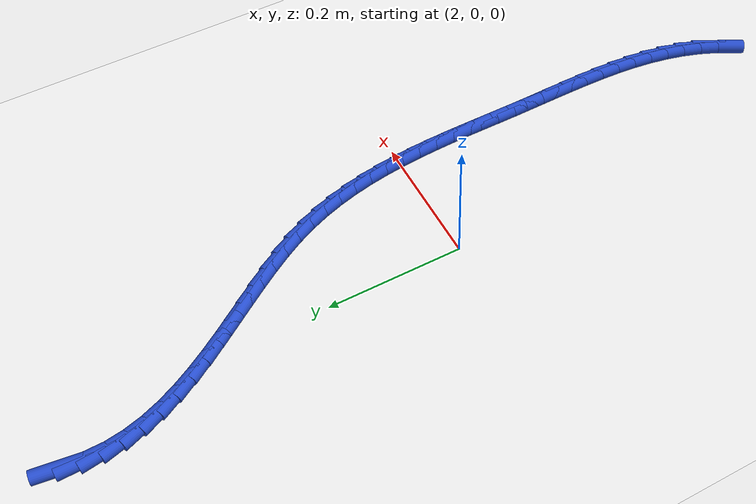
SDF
<sdf version="1.6">
 <world name="default">
  <model name="ground_plane">
   <static>1</static>
   <link name="link">
    <collision name="collision">
     <geometry><plane><normal>0 0 1</normal><size>100 100</size></plane></geometry>
     <surface><friction><ode><mu>100</mu><mu2>50</mu2></ode></friction></surface>
    </collision>
    <visual name="visual">
     <cast_shadows>0</cast_shadows>
     <geometry><plane><normal>0 0 1</normal><size>100 100</size></plane></geometry>
     <material>
      <script><uri>file://media/materials/scripts/gazebo.material</uri><name>Gazebo/WhiteGlow</name></script>
     </material>
    </visual>
   </link>
  </model>
  <model name="line">
   <link name="link_102">
    <pose>1.94351243120654 0.5826096786088142 0.01 0 1.57 1.4415644303944506</pose>
    <collision name="collision">
     <geometry><cylinder><radius>0.01</radius><length>0.08</length></cylinder></geometry>
    </collision>
    <visual name="visual">
     <material>
      <script><name>Gazebo/Blue</name><uri>file://media/materials/scripts/gazebo.material</uri></script>
     </material>
     <geometry><cylinder><radius>0.01</radius><length>0.08</length></cylinder></geometry>
    </visual>
   </link>
   <link name="link_103">
    <pose>1.9398380834825428 0.5543359314568718 0.01 0 1.57 -1.5582476464024653</pose>
    <collision name="collision">
     <geometry><cylinder><radius>0.01</radius><length>0.08</length></cylinder></geometry>
    </collision>
    <visual name="visual">
     <material>
      <script><name>Gazebo/Blue</name><uri>file://media/materials/scripts/gazebo.material</uri></script>
     </material>
     <geometry><cylinder><radius>0.01</radius><length>0.08</length></cylinder></geometry>
    </visual>
   </link>
   <link name="link_104">
    <pose>1.940185110414232 0.526682926895899 0.01 0 1.57 -1.426111541294023</pose>
    <collision name="collision">
     <geometry><cylinder><radius>0.01</radius><length>0.08</length></cylinder></geometry>
    </collision>
    <visual name="visual">
     <material>
      <script><name>Gazebo/Blue</name><uri>file://media/materials/scripts/gazebo.material</uri></script>
     </material>
     <geometry><cylinder><radius>0.01</radius><length>0.08</length></cylinder></geometry>
    </visual>
   </link>
   <link name="link_105">
    <pose>1.9441339575045418 0.49958087948975377 0.01 0 1.57 -1.3090645618036647</pose>
    <collision name="collision">
     <geometry><cylinder><radius>0.01</radius><length>0.08</length></cylinder></geometry>
    </collision>
    <visual name="visual">
     <material>
      <script><name>Gazebo/Blue</name><uri>file://media/materials/scripts/gazebo.material</uri></script>
     </material>
     <geometry><cylinder><radius>0.01</radius><length>0.08</length></cylinder></geometry>
    </visual>
   </link>
   <link name="link_106">
    <pose>1.9512650702564083 0.47296000380229264 0.01 0 1.57 -1.2098443063075954</pose>
    <collision name="collision">
     <geometry><cylinder><radius>0.01</radius><length>0.08</length></cylinder></geometry>
    </collision>
    <visual name="visual">
     <material>
      <script><name>Gazebo/Blue</name><uri>file://media/materials/scripts/gazebo.material</uri></script>
     </material>
     <geometry><cylinder><radius>0.01</radius><length>0.08</length></cylinder></geometry>
    </visual>
   </link>
   <link name="link_107">
    <pose>1.961158894172768 0.44675051439737357 0.01 0 1.57 -1.128934660780634</pose>
    <collision name="collision">
     <geometry><cylinder><radius>0.01</radius><length>0.08</length></cylinder></geometry>
    </collision>
    <visual name="visual">
     <material>
      <script><name>Gazebo/Blue</name><uri>file://media/materials/scripts/gazebo.material</uri></script>
     </material>
     <geometry><cylinder><radius>0.01</radius><length>0.08</length></cylinder></geometry>
    </visual>
   </link>
   <link name="link_108">
    <pose>1.9733958747565559 0.42088262583885383 0.01 0 1.57 -1.06547464182261</pose>
    <collision name="collision">
     <geometry><cylinder><radius>0.01</radius><length>0.08</length></cylinder></geometry>
    </collision>
    <visual name="visual">
     <material>
      <script><name>Gazebo/Blue</name><uri>file://media/materials/scripts/gazebo.material</uri></script>
     </material>
     <geometry><cylinder><radius>0.01</radius><length>0.08</length></cylinder></geometry>
    </visual>
   </link>
   <link name="link_109">
    <pose>1.9875564575107079 0.3952865526905908 0.01 0 1.57 -1.0180701814335957</pose>
    <collision name="collision">
     <geometry><cylinder><radius>0.01</radius><length>0.08</length></cylinder></geometry>
    </collision>
    <visual name="visual">
     <material>
      <script><name>Gazebo/Blue</name><uri>file://media/materials/scripts/gazebo.material</uri></script>
     </material>
     <geometry><cylinder><radius>0.01</radius><length>0.08</length></cylinder></geometry>
    </visual>
   </link>
   <link name="link_110">
    <pose>2.00322108793816 0.3698925095164422 0.01 0 1.57 -0.9853213281584219</pose>
    <collision name="collision">
     <geometry><cylinder><radius>0.01</radius><length>0.08</length></cylinder></geometry>
    </collision>
    <visual name="visual">
     <material>
      <script><name>Gazebo/Blue</name><uri>file://media/materials/scripts/gazebo.material</uri></script>
     </material>
     <geometry><cylinder><radius>0.01</radius><length>0.08</length></cylinder></geometry>
    </visual>
   </link>
   <link name="link_111">
    <pose>2.019970211541847 0.34463071088026503 0.01 0 1.57 -0.9661007872257618</pose>
    <collision name="collision">
     <geometry><cylinder><radius>0.01</radius><length>0.08</length></cylinder></geometry>
    </collision>
    <visual name="visual">
     <material>
      <script><name>Gazebo/Blue</name><uri>file://media/materials/scripts/gazebo.material</uri></script>
     </material>
     <geometry><cylinder><radius>0.01</radius><length>0.08</length></cylinder></geometry>
    </visual>
   </link>
   <link name="link_112">
    <pose>2.037384273824706 0.31943137134591704 0.01 0 1.57 -0.9596769359094095</pose>
    <collision name="collision">
     <geometry><cylinder><radius>0.01</radius><length>0.08</length></cylinder></geometry>
    </collision>
    <visual name="visual">
     <material>
      <script><name>Gazebo/Blue</name><uri>file://media/materials/scripts/gazebo.material</uri></script>
     </material>
     <geometry><cylinder><radius>0.01</radius><length>0.08</length></cylinder></geometry>
    </visual>
   </link>
   <link name="link_113">
    <pose>2.0550437202896714 0.29422470547725543 0.01 0 1.57 -0.9657565607343671</pose>
    <collision name="collision">
     <geometry><cylinder><radius>0.01</radius><length>0.08</length></cylinder></geometry>
    </collision>
    <visual name="visual">
     <material>
      <script><name>Gazebo/Blue</name><uri>file://media/materials/scripts/gazebo.material</uri></script>
     </material>
     <geometry><cylinder><radius>0.01</radius><length>0.08</length></cylinder></geometry>
    </visual>
   </link>
   <link name="link_114">
    <pose>2.0725289964396794 0.2689409278381378 0.01 0 1.57 -0.984489796676276</pose>
    <collision name="collision">
     <geometry><cylinder><radius>0.01</radius><length>0.08</length></cylinder></geometry>
    </collision>
    <visual name="visual">
     <material>
      <script><name>Gazebo/Blue</name><uri>file://media/materials/scripts/gazebo.material</uri></script>
     </material>
     <geometry><cylinder><radius>0.01</radius><length>0.08</length></cylinder></geometry>
    </visual>
   </link>
   <link name="link_115">
    <pose>2.0894205477776655 0.24351025299242132 0.01 0 1.57 -1.0164511597164658</pose>
    <collision name="collision">
     <geometry><cylinder><radius>0.01</radius><length>0.08</length></cylinder></geometry>
    </collision>
    <visual name="visual">
     <material>
      <script><name>Gazebo/Blue</name><uri>file://media/materials/scripts/gazebo.material</uri></script>
     </material>
     <geometry><cylinder><radius>0.01</radius><length>0.08</length></cylinder></geometry>
    </visual>
   </link>
   <link name="link_116">
    <pose>2.105298819806567 0.2178628955039638 0.01 0 1.57 -1.0625859740059256</pose>
    <collision name="collision">
     <geometry><cylinder><radius>0.01</radius><length>0.08</length></cylinder></geometry>
    </collision>
    <visual name="visual">
     <material>
      <script><name>Gazebo/Blue</name><uri>file://media/materials/scripts/gazebo.material</uri></script>
     </material>
     <geometry><cylinder><radius>0.01</radius><length>0.08</length></cylinder></geometry>
    </visual>
   </link>
   <link name="link_117">
    <pose>2.119744258029317 0.1919290699366223 0.01 0 1.57 -1.1237365492112361</pose>
    <collision name="collision">
     <geometry><cylinder><radius>0.01</radius><length>0.08</length></cylinder></geometry>
    </collision>
    <visual name="visual">
     <material>
      <script><name>Gazebo/Blue</name><uri>file://media/materials/scripts/gazebo.material</uri></script>
     </material>
     <geometry><cylinder><radius>0.01</radius><length>0.08</length></cylinder></geometry>
    </visual>
   </link>
   <link name="link_118">
    <pose>2.132347828063362 0.16564062832065254 0.01 0 1.57 -1.191617790047895</pose>
    <collision name="collision">
     <geometry><cylinder><radius>0.01</radius><length>0.08</length></cylinder></geometry>
    </collision>
    <visual name="visual">
     <material>
      <script><name>Gazebo/Blue</name><uri>file://media/materials/scripts/gazebo.material</uri></script>
     </material>
     <geometry><cylinder><radius>0.01</radius><length>0.08</length></cylinder></geometry>
    </visual>
   </link>
   <link name="link_119">
    <pose>2.142974212840617 0.13897202706144798 0.01 0 1.57 -1.2558233624092168</pose>
    <collision name="collision">
     <geometry><cylinder><radius>0.01</radius><length>0.08</length></cylinder></geometry>
    </collision>
    <visual name="visual">
     <material>
      <script><name>Gazebo/Blue</name><uri>file://media/materials/scripts/gazebo.material</uri></script>
     </material>
     <geometry><cylinder><radius>0.01</radius><length>0.08</length></cylinder></geometry>
    </visual>
   </link>
   <link name="link_120">
    <pose>2.151780710491881 0.11194326841424575 0.01 0 1.57 -1.314961346540619</pose>
    <collision name="collision">
     <geometry><cylinder><radius>0.01</radius><length>0.08</length></cylinder></geometry>
    </collision>
    <visual name="visual">
     <material>
      <script><name>Gazebo/Blue</name><uri>file://media/materials/scripts/gazebo.material</uri></script>
     </material>
     <geometry><cylinder><radius>0.01</radius><length>0.08</length></cylinder></geometry>
    </visual>
   </link>
   <link name="link_121">
    <pose>2.158938924121176 0.08457658121774304 0.01 0 1.57 -1.3683674331051552</pose>
    <collision name="collision">
     <geometry><cylinder><radius>0.01</radius><length>0.08</length></cylinder></geometry>
    </collision>
    <visual name="visual">
     <material>
      <script><name>Gazebo/Blue</name><uri>file://media/materials/scripts/gazebo.material</uri></script>
     </material>
     <geometry><cylinder><radius>0.01</radius><length>0.08</length></cylinder></geometry>
    </visual>
   </link>
   <link name="link_122">
    <pose>2.164620456832524 0.05689419431063829 0.01 0 1.57 -1.4156171990382425</pose>
    <collision name="collision">
     <geometry><cylinder><radius>0.01</radius><length>0.08</length></cylinder></geometry>
    </collision>
    <visual name="visual">
     <material>
      <script><name>Gazebo/Blue</name><uri>file://media/materials/scripts/gazebo.material</uri></script>
     </material>
     <geometry><cylinder><radius>0.01</radius><length>0.08</length></cylinder></geometry>
    </visual>
   </link>
   <link name="link_123">
    <pose>2.1689969117299457 0.028918336531629472 0.01 0 1.57 -1.456489247013561</pose>
    <collision name="collision">
     <geometry><cylinder><radius>0.01</radius><length>0.08</length></cylinder></geometry>
    </collision>
    <visual name="visual">
     <material>
      <script><name>Gazebo/Blue</name><uri>file://media/materials/scripts/gazebo.material</uri></script>
     </material>
     <geometry><cylinder><radius>0.01</radius><length>0.08</length></cylinder></geometry>
    </visual>
   </link>
   <link name="link_124">
    <pose>2.1722398919174633 0.0006712367194146203 0.01 0 1.57 -1.4909168428152415</pose>
    <collision name="collision">
     <geometry><cylinder><radius>0.01</radius><length>0.08</length></cylinder></geometry>
    </collision>
    <visual name="visual">
     <material>
      <script><name>Gazebo/Blue</name><uri>file://media/materials/scripts/gazebo.material</uri></script>
     </material>
     <geometry><cylinder><radius>0.01</radius><length>0.08</length></cylinder></geometry>
    </visual>
   </link>
   <link name="link_125">
    <pose>2.174521000499098 -0.027824876287308287 0.01 0 1.57 -1.518938625194315</pose>
    <collision name="collision">
     <geometry><cylinder><radius>0.01</radius><length>0.08</length></cylinder></geometry>
    </collision>
    <visual name="visual">
     <material>
      <script><name>Gazebo/Blue</name><uri>file://media/materials/scripts/gazebo.material</uri></script>
     </material>
     <geometry><cylinder><radius>0.01</radius><length>0.08</length></cylinder></geometry>
    </visual>
   </link>
   <link name="link_126">
    <pose>2.1760118405788718 -0.05654777364984127 0.01 0 1.57 -1.5406550438106408</pose>
    <collision name="collision">
     <geometry><cylinder><radius>0.01</radius><length>0.08</length></cylinder></geometry>
    </collision>
    <visual name="visual">
     <material>
      <script><name>Gazebo/Blue</name><uri>file://media/materials/scripts/gazebo.material</uri></script>
     </material>
     <geometry><cylinder><radius>0.01</radius><length>0.08</length></cylinder></geometry>
    </visual>
   </link>
   <link name="link_127">
    <pose>2.1768840152608058 -0.0854752265294863 0.01 0 1.57 -1.556193599560228</pose>
    <collision name="collision">
     <geometry><cylinder><radius>0.01</radius><length>0.08</length></cylinder></geometry>
    </collision>
    <visual name="visual">
     <material>
      <script><name>Gazebo/Blue</name><uri>file://media/materials/scripts/gazebo.material</uri></script>
     </material>
     <geometry><cylinder><radius>0.01</radius><length>0.08</length></cylinder></geometry>
    </visual>
   </link>
   <link name="link_128">
    <pose>2.177309127648921 -0.11458500608754536 0.01 0 1.57 -1.565683497237959</pose>
    <collision name="collision">
     <geometry><cylinder><radius>0.01</radius><length>0.08</length></cylinder></geometry>
    </collision>
    <visual name="visual">
     <material>
      <script><name>Gazebo/Blue</name><uri>file://media/materials/scripts/gazebo.material</uri></script>
     </material>
     <geometry><cylinder><radius>0.01</radius><length>0.08</length></cylinder></geometry>
    </visual>
   </link>
   <link name="link_129">
    <pose>2.17745878084724 -0.1438548834853205 0.01 0 1.57 -1.5692390134632246</pose>
    <collision name="collision">
     <geometry><cylinder><radius>0.01</radius><length>0.08</length></cylinder></geometry>
    </collision>
    <visual name="visual">
     <material>
      <script><name>Gazebo/Blue</name><uri>file://media/materials/scripts/gazebo.material</uri></script>
     </material>
     <geometry><cylinder><radius>0.01</radius><length>0.08</length></cylinder></geometry>
    </visual>
   </link>
   <link name="link_130">
    <pose>2.177504577959784 -0.1732626298841137 0.01 0 1.57 -1.566950441068009</pose>
    <collision name="collision">
     <geometry><cylinder><radius>0.01</radius><length>0.08</length></cylinder></geometry>
    </collision>
    <visual name="visual">
     <material>
      <script><name>Gazebo/Blue</name><uri>file://media/materials/scripts/gazebo.material</uri></script>
     </material>
     <geometry><cylinder><radius>0.01</radius><length>0.08</length></cylinder></geometry>
    </visual>
   </link>
   <link name="link_131">
    <pose>2.1776181220905735 -0.20278601644522692 0.01 0 1.57 -1.5596740774624422</pose>
    <collision name="collision">
     <geometry><cylinder><radius>0.01</radius><length>0.08</length></cylinder></geometry>
    </collision>
    <visual name="visual">
     <material>
      <script><name>Gazebo/Blue</name><uri>file://media/materials/scripts/gazebo.material</uri></script>
     </material>
     <geometry><cylinder><radius>0.01</radius><length>0.08</length></cylinder></geometry>
    </visual>
   </link>
   <link name="link_132">
    <pose>2.177947505500928 -0.23239961512790597 0.01 0 1.57 -1.5555225324323705</pose>
    <collision name="collision">
     <geometry><cylinder><radius>0.01</radius><length>0.08</length></cylinder></geometry>
    </collision>
    <visual name="visual">
     <material>
      <script><name>Gazebo/Blue</name><uri>file://media/materials/scripts/gazebo.material</uri></script>
     </material>
     <geometry><cylinder><radius>0.01</radius><length>0.08</length></cylinder></geometry>
    </visual>
   </link>
   <link name="link_133">
    <pose>2.1784003424312615 -0.26204527521153936 0.01 0 1.57 -1.5592075502950762</pose>
    <collision name="collision">
     <geometry><cylinder><radius>0.01</radius><length>0.08</length></cylinder></geometry>
    </collision>
    <visual name="visual">
     <material>
      <script><name>Gazebo/Blue</name><uri>file://media/materials/scripts/gazebo.material</uri></script>
     </material>
     <geometry><cylinder><radius>0.01</radius><length>0.08</length></cylinder></geometry>
    </visual>
   </link>
   <link name="link_134">
    <pose>2.1787433902533517 -0.29164567909198613 0.01 0 1.57 1.5707364297577495</pose>
    <collision name="collision">
     <geometry><cylinder><radius>0.01</radius><length>0.08</length></cylinder></geometry>
    </collision>
    <visual name="visual">
     <material>
      <script><name>Gazebo/Blue</name><uri>file://media/materials/scripts/gazebo.material</uri></script>
     </material>
     <geometry><cylinder><radius>0.01</radius><length>0.08</length></cylinder></geometry>
    </visual>
   </link>
   <link name="link_135">
    <pose>2.1787416246331883 -0.32112326672220776 0.01 0 1.57 1.5509335433791798</pose>
    <collision name="collision">
     <geometry><cylinder><radius>0.01</radius><length>0.08</length></cylinder></geometry>
    </collision>
    <visual name="visual">
     <material>
      <script><name>Gazebo/Blue</name><uri>file://media/materials/scripts/gazebo.material</uri></script>
     </material>
     <geometry><cylinder><radius>0.01</radius><length>0.08</length></cylinder></geometry>
    </visual>
   </link>
   <link name="link_136">
    <pose>2.178160021236759 -0.350400478055166 0.01 0 1.57 1.5226783109100777</pose>
    <collision name="collision">
     <geometry><cylinder><radius>0.01</radius><length>0.08</length></cylinder></geometry>
    </collision>
    <visual name="visual">
     <material>
      <script><name>Gazebo/Blue</name><uri>file://media/materials/scripts/gazebo.material</uri></script>
     </material>
     <geometry><cylinder><radius>0.01</radius><length>0.08</length></cylinder></geometry>
    </visual>
   </link>
   <link name="link_137">
    <pose>2.176763555730054 -0.3793997530438225 0.01 0 1.57 1.4855970300248549</pose>
    <collision name="collision">
     <geometry><cylinder><radius>0.01</radius><length>0.08</length></cylinder></geometry>
    </collision>
    <visual name="visual">
     <material>
      <script><name>Gazebo/Blue</name><uri>file://media/materials/scripts/gazebo.material</uri></script>
     </material>
     <geometry><cylinder><radius>0.01</radius><length>0.08</length></cylinder></geometry>
    </visual>
   </link>
   <link name="link_138">
    <pose>2.17431720377906 -0.4080435316411386 0.01 0 1.57 1.4392956042225409</pose>
    <collision name="collision">
     <geometry><cylinder><radius>0.01</radius><length>0.08</length></cylinder></geometry>
    </collision>
    <visual name="visual">
     <material>
      <script><name>Gazebo/Blue</name><uri>file://media/materials/scripts/gazebo.material</uri></script>
     </material>
     <geometry><cylinder><radius>0.01</radius><length>0.08</length></cylinder></geometry>
    </visual>
   </link>
   <link name="link_139">
    <pose>2.170585941049768 -0.4362542538000761 0.01 0 1.57 1.3834463359710636</pose>
    <collision name="collision">
     <geometry><cylinder><radius>0.01</radius><length>0.08</length></cylinder></geometry>
    </collision>
    <visual name="visual">
     <material>
      <script><name>Gazebo/Blue</name><uri>file://media/materials/scripts/gazebo.material</uri></script>
     </material>
     <geometry><cylinder><radius>0.01</radius><length>0.08</length></cylinder></geometry>
    </visual>
   </link>
   <link name="link_140">
    <pose>2.1653347432081644 -0.4639543594735965 0.01 0 1.57 1.3179125066724109</pose>
    <collision name="collision">
     <geometry><cylinder><radius>0.01</radius><length>0.08</length></cylinder></geometry>
    </collision>
    <visual name="visual">
     <material>
      <script><name>Gazebo/Blue</name><uri>file://media/materials/scripts/gazebo.material</uri></script>
     </material>
     <geometry><cylinder><radius>0.01</radius><length>0.08</length></cylinder></geometry>
    </visual>
   </link>
   <link name="link_141">
    <pose>2.15832858592024 -0.49106628861466145 0.01 0 1.57 1.24290748565568</pose>
    <collision name="collision">
     <geometry><cylinder><radius>0.01</radius><length>0.08</length></cylinder></geometry>
    </collision>
    <visual name="visual">
     <material>
      <script><name>Gazebo/Blue</name><uri>file://media/materials/scripts/gazebo.material</uri></script>
     </material>
     <geometry><cylinder><radius>0.01</radius><length>0.08</length></cylinder></geometry>
    </visual>
   </link>
   <link name="link_142">
    <pose>2.1493324448519813 -0.5175124811762325 0.01 0 1.57 1.159165580374533</pose>
    <collision name="collision">
     <geometry><cylinder><radius>0.01</radius><length>0.08</length></cylinder></geometry>
    </collision>
    <visual name="visual">
     <material>
      <script><name>Gazebo/Blue</name><uri>file://media/materials/scripts/gazebo.material</uri></script>
     </material>
     <geometry><cylinder><radius>0.01</radius><length>0.08</length></cylinder></geometry>
    </visual>
   </link>
   <link name="link_143">
    <pose>2.138111296062309 -0.5432153770368457 0.01 0 1.57 1.070256707628655</pose>
    <collision name="collision">
     <geometry><cylinder><radius>0.01</radius><length>0.08</length></cylinder></geometry>
    </collision>
    <visual name="visual">
     <material>
      <script><name>Gazebo/Blue</name><uri>file://media/materials/scripts/gazebo.material</uri></script>
     </material>
     <geometry><cylinder><radius>0.01</radius><length>0.08</length></cylinder></geometry>
    </visual>
   </link>
  </model>
 </world>
</sdf>
